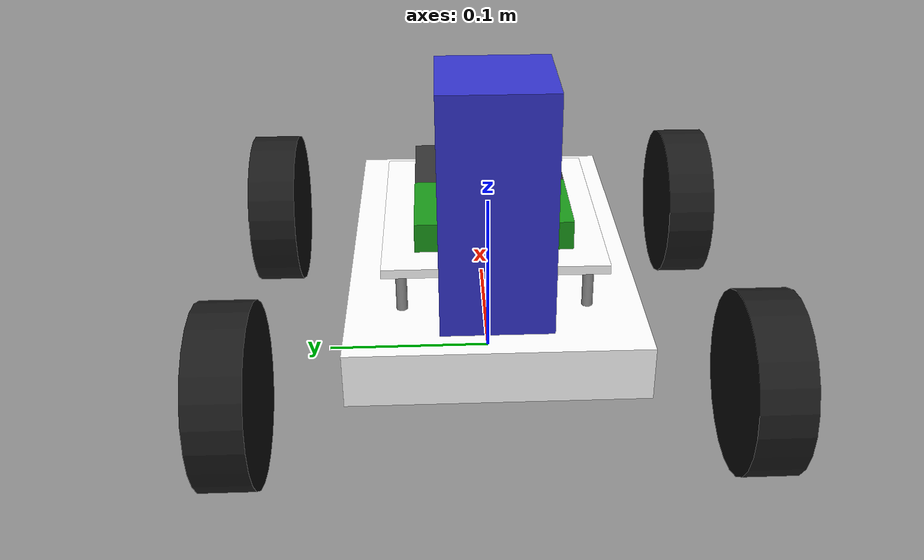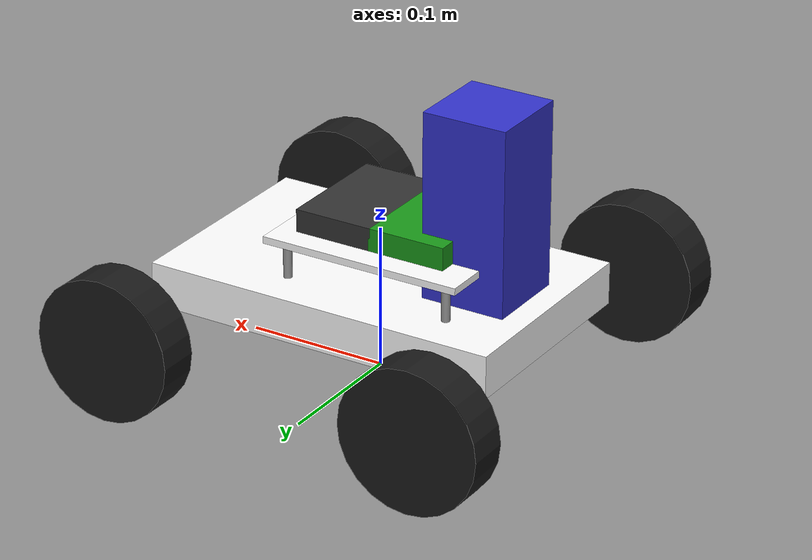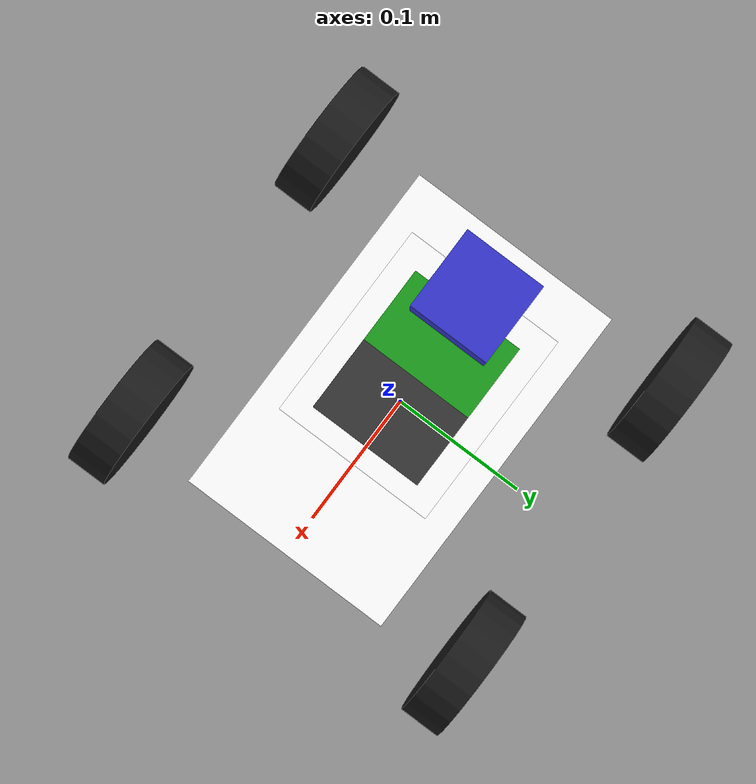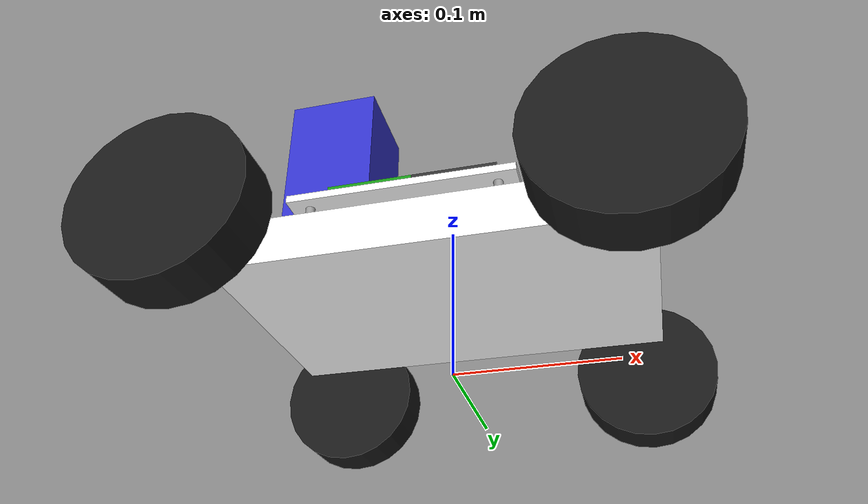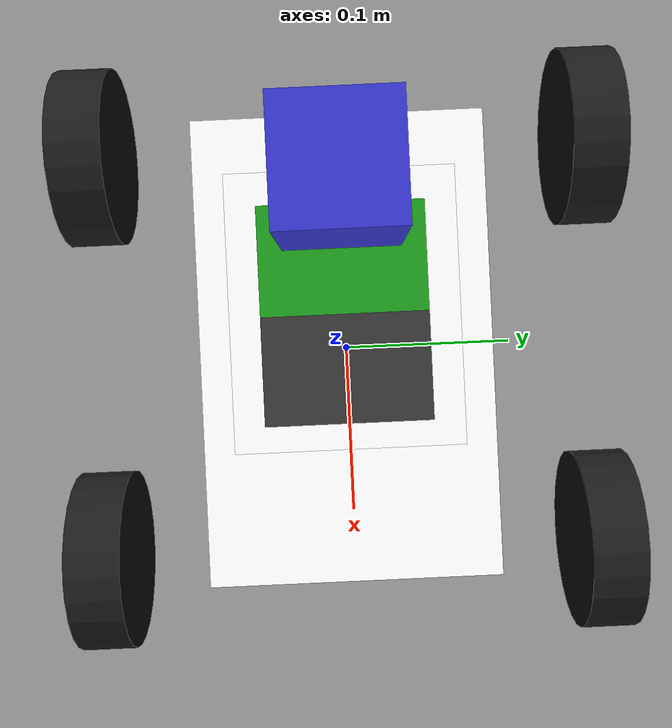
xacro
<?xml version="1.0"?>
<robot name="custom_rover" xmlns:xacro="http://ros.org/wiki/xacro">

  <material name="white">
    <color rgba="1.0 1.0 1.0 1.0"/>
  </material>
  <material name="black">
    <color rgba="0.1 0.1 0.1 1.0"/>
  </material>
  <material name="blue">
    <color rgba="0.2 0.2 0.8 1.0"/>
  </material>
  <material name="grey">
    <color rgba="0.6 0.6 0.6 1.0"/>
  </material>
  <material name="green">
    <color rgba="0.1 0.6 0.1 1.0"/>
  </material>
  <material name="dark_grey">
    <color rgba="0.2 0.2 0.2 1.0"/>
  </material>

  <link name="base_footprint"/>

  <link name="base_link">
    <visual>
      <origin xyz="0 0 0" rpy="0 0 0"/>
      <geometry>
        <box size="0.255 0.16 0.03"/>
      </geometry>
      <material name="white"/>
    </visual>
    <collision>
      <origin xyz="0 0 0" rpy="0 0 0"/>
      <geometry>
        <box size="0.255 0.16 0.03"/>
      </geometry>
    </collision>
  </link>

  <joint name="base_joint" type="fixed">
    <parent link="base_footprint"/>
    <child link="base_link"/>
    <origin xyz="0 0 0.06" rpy="0 0 0"/>
  </joint>

  <link name="top_plate">
    <visual>
      <origin xyz="0 0 0" rpy="0 0 0"/>
      <geometry>
        <box size="0.145 0.12 0.005"/>
      </geometry>
      <material name="white"/>
    </visual>
  </link>

  <joint name="top_plate_joint" type="fixed">
    <parent link="base_link"/>
    <child link="top_plate"/>
    <origin xyz="-0.02 0 0.0425" rpy="0 0 0"/>
  </joint>

  <xacro:macro name="standoff" params="prefix x y">
    <link name="${prefix}_standoff">
      <visual>
        <origin xyz="0 0 0" rpy="0 0 0"/>
        <geometry>
          <cylinder radius="0.003" length="0.025"/>
        </geometry>
        <material name="grey"/>
      </visual>
    </link>
    <joint name="${prefix}_standoff_joint" type="fixed">
      <parent link="top_plate"/>
      <child link="${prefix}_standoff"/>
      <origin xyz="${x} ${y} -0.015" rpy="0 0 0"/>
    </joint>
  </xacro:macro>

  <xacro:standoff prefix="front_left" x="0.06" y="0.05" />
  <xacro:standoff prefix="front_right" x="0.06" y="-0.05" />
  <xacro:standoff prefix="rear_left" x="-0.06" y="0.05" />
  <xacro:standoff prefix="rear_right" x="-0.06" y="-0.05" />

  <link name="raspberry_pi">
    <visual>
      <origin xyz="0 0 0" rpy="0 0 0"/>
      <geometry>
        <box size="0.056 0.085 0.016"/>
      </geometry>
      <material name="green"/>
    </visual>
  </link>

  <joint name="rpi_joint" type="fixed">
    <parent link="top_plate"/>
    <child link="raspberry_pi"/>
    <origin xyz="-0.025 0 0.0105" rpy="0 0 0"/>
  </joint>

  <link name="pixhawk_link">
    <visual>
      <origin xyz="0 0 0" rpy="0 0 0"/>
      <geometry>
        <box size="0.056 0.085 0.016"/>
      </geometry>
      <material name="dark_grey"/>
    </visual>
  </link>

  <joint name="pixhawk_joint" type="fixed">
    <parent link="top_plate"/>
    <child link="pixhawk_link"/>
    <origin xyz="0.03 0 0.0105" rpy="0 0 0"/>
  </joint>

  <link name="laser">
    <visual>
      <origin xyz="0 0 0" rpy="0 0 0"/>
      <geometry>
        <box size="0.06 0.06 0.13"/>
      </geometry>
      <material name="blue"/>
    </visual>
  </link>

  <joint name="lidar_joint" type="fixed">
    <parent link="base_link"/>
    <child link="laser"/>
    <origin xyz="-0.08 0 0.08" rpy="0 0 0"/>
  </joint>

  <xacro:macro name="wheel" params="prefix x_reflect y_reflect">
    <link name="${prefix}_wheel">
      <visual>
        <origin xyz="0 0 0" rpy="${pi/2} 0 0"/>
        <geometry>
          <cylinder radius="0.050" length="0.03"/>
        </geometry>
        <material name="black"/>
      </visual>
      <collision>
        <origin xyz="0 0 0" rpy="${pi/2} 0 0"/>
        <geometry>
          <cylinder radius="0.050" length="0.03"/>
        </geometry>
      </collision>
    </link>

    <joint name="${prefix}_wheel_joint" type="continuous">
      <parent link="base_link"/>
      <child link="${prefix}_wheel"/>
      <origin xyz="${x_reflect * 0.115} ${y_reflect * 0.140} -0.015" rpy="0 0 0"/>
      <axis xyz="0 1 0"/>
    </joint>
  </xacro:macro>

  <xacro:wheel prefix="front_left" x_reflect="1" y_reflect="1" />
  <xacro:wheel prefix="front_right" x_reflect="1" y_reflect="-1" />
  <xacro:wheel prefix="rear_left" x_reflect="-1" y_reflect="1" />
  <xacro:wheel prefix="rear_right" x_reflect="-1" y_reflect="-1" />

</robot>
